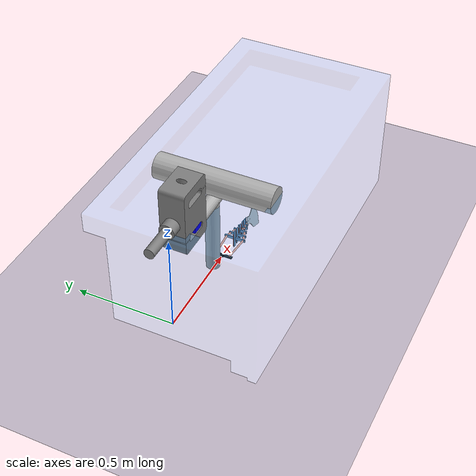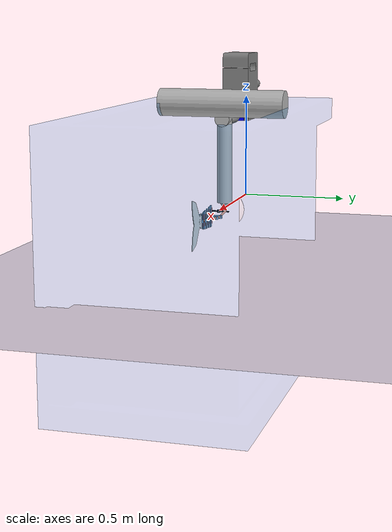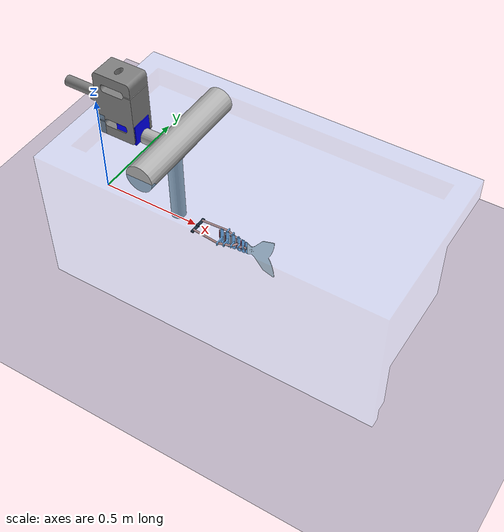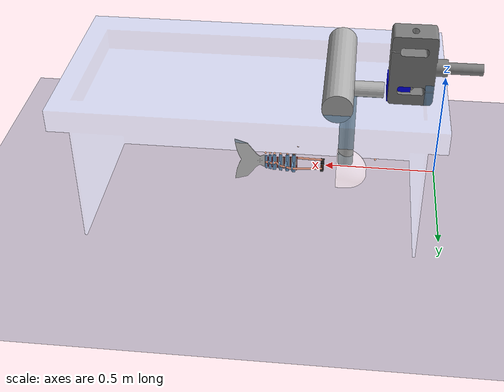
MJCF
<!--Creates a tendon fish based on Mike Yan Michelis' design. Adds a contact set between the head and the sliding block-->
<!-- Measures the force of the fish (from the thrust of its tail) via the FishTest.py script and the force sensor on the block-->
<!-- adds a realistic mass value to the bodies-->

<mujoco model="tendonFish">
    <option gravity="0 0 0" density="1000" viscosity="0.0013" integrator="implicitfast" timestep="0.001" iterations="100" solver="Newton" tolerance="1e-15" ls_tolerance="1e-9" noslip_tolerance="1e-9" o_solimp="0 0.01 0.01 0.1 2">
        <flag contact="enable"/>
    </option>

    <visual>
        <global offheight="2160" offwidth="3840"/>
        <rgba haze=".3 .3 .3 1"/>
    </visual>

    <!--add a mesh that pivots like the actual fishtank setup-->
    <!--imports meshes-->
    <asset>
        <texture type="skybox" builtin="gradient" rgb1="0.6 0.6 0.6" rgb2="0 0 0" width="512" height="512"/>
        <texture name="texplane" type="2d" builtin="checker" rgb1=".15 .2 .35" rgb2=".2 .3 .45" width="512" height="512" mark="cross" markrgb=".8 .8 .8"/>
        <material name="matplane" reflectance="0.3" texture="texplane" texrepeat="10 10" texuniform="true"/>
        <mesh name="tailMesh" file="C:\Users\15405\OneDrive\Desktop\Career\ETHZ\ETHZ Work\mujoco-3.3.2-windows-x86_64\model\mesh\tailV2.STL" scale="0.0015 0.0015 0.0025" />
        <mesh name="headMesh" file="C:\Users\15405\OneDrive\Desktop\Career\ETHZ\ETHZ Work\mujoco-3.3.2-windows-x86_64\model\mesh\headExternal.STL" scale="0.0015 0.0015 0.0025" />
        <mesh name="Tank" file="C:\Users\15405\OneDrive\Desktop\Career\ETHZ\ETHZ Work\mujoco-3.3.2-windows-x86_64\model\mesh\glassTank.STL" scale="0.0015 0.0015 0.0025" />
        <mesh name="loadCell" file="C:\Users\15405\OneDrive\Desktop\Career\ETHZ\ETHZ Work\mujoco-3.3.2-windows-x86_64\model\mesh\loadCell.STL" scale="0.015 0.025 0.025" />
        <material name="acrylic" rgba="0.576470588235 0.694117647059 0.8 0.2"/>
        <material name="alu" reflectance="0.9" specular="0.9" shininess="0.9" rgba=".7 .7 .7 1"/>
        <material name="marker" rgba=".9 .4 .1 .5"/>
    </asset>

    <!--High damping and stifness values on tendon make it semi-rigid which is what is intended in the real-fish test-->
    <default>
        <joint type="hinge" pos="0 0 0" axis="0 0 1" range="-80 80" stiffness="0.65" damping="0.0"/>
        <geom fluidcoef="0.1 0.1 0.1 2.0 1.0" condim="1"/>
        <tendon width="0.005" rgba=".9 .6 .5 1" stiffness="60" damping="1"/>
    </default>

    <worldbody>
        <camera name="fixed" pos="0.4 -1.2 1.2" xyaxes="1 0 0 0 1 1"/>
        <camera name="fixedTop" pos="-0.85 0 1.5" xyaxes="0 -1 0 1 0 0.75"/>
        <camera name="fixedDiag" pos="1.2 -1.2 1.2" xyaxes="0.8 0.6 0 -0.4 0.5 0.75"/>
        <camera pos="0.625 -0.842 0.620" xyaxes="0.758 0.653 -0.000 -0.468 0.544 0.697"/>

        <geom name="floor" pos="0 0 -0.2" size="0 0 1" type="plane" material="matplane"/>
        <geom name="ceiling" pos="0 0 0.2" size="0 0 1" zaxis="0 0 -1" type="plane" rgba=".7 .1 .1 0"/>
        <light directional="true" diffuse=".8 .8 .8" specular=".2 .2 .2" pos="0 0 5" dir="0 0 -1"/>

        <!--creates a loadcell body and overlapping mesh-->
        <body name="slider_body" pos=".20 0 .45">
            <!--creates a geometry, not a joint, restricts all movement-->
            <geom type="box" size=".05 .05 .05" rgba="0 0 1 1" contype="1" mass=".1" conaffinity="1"/>
            <site name="ft_sensor" pos="0 0 0" rgba="1 1 1 1" size=".05 .05 .05" type="box" />
            <geom name="loadingCell" type="mesh" mesh="loadCell" pos="-.35 -.055 -.05"/>
        </body>

        <body name="FishTank" pos="0 -.42 -.7">
            <geom name="TankMesh" type="mesh" mesh="Tank" pos="0 0 0" mass="0" contype="0" conaffinity="0" rgba="0.160784313725 0.588235294118 1 0.1"/>
        </body>

        <!--adds a slider range to keep the fish always propogating forward from its original com like in the simulation-->
        <!-- add a slider that keeps the head moving forward-->
        <body pos=".35 0 0">
            <joint name="headX" pos="0.02432519 0 0.00306519" type="slide" axis="1 0 0" stiffness="0" damping="0" range="-0.025669489880513867 0.003387345022720789"/>
            <site name="COM" pos="0.02432519 0 0.00306519" size="0.02" material="marker"/>

            <!-- realistic mass should be about .1 kg, had been .25 -->
            <geom name="head_mesh" type="mesh" mesh="headMesh" pos=".1 .105 .1" size="0.077 0.0025 0.05" material="acrylic" mass=".1" quat="0 0 .7071 -.7071" fluidshape="ellipsoid"  contype="1" conaffinity="1"  />

            <site name="marker0" pos="-0.077 0 0.05" size="0.005" material="marker"/>
            <site name="marker1" pos="0.065 0 0.05" size="0.005" material="marker"/>
            <site name="marker2" pos="0.1655 -0.0775 0.05" size="0.005" material="marker"/>
            <site name="marker3" pos="0.1655 0.0775 0.05" size="0.005" material="marker"/>
            <site name="bodyFin" pos="0.28 0 0.1" size="0.005" material="marker"/>

            <!--had stifness of 10000 and damping of 10000-->
            <!--had worked very well with s=10 and d=100-->
            <!--adds a hinge to turn translation force into rotation -->
            <body name="ForceAmp_Base" pos=".07 0 .30">
                <geom name="horizontalHinge" type="cylinder" pos=".035 0 .2" size=".065 .3" material="alu" mass=".001"  quat=".7071 .7071 0 0" contype="0" conaffinity="0" />
                <joint name="hingeHorizontal" type="hinge" axis="0 1 0"/>
            </body>

            <body pos=".061 0 .225" name="ForceAmp" >
                    <joint name="forceJoint" type="hinge" axis=" 0 1 0" pos="0 0 -.2" limited="true" stiffness="1" damping="10" range="-0.96 0"/>
                    <site name="ForceCOM" pos=" 0 0 -.2" size=".02" material="alu" />
                    <geom name="InitialHinge" type="cylinder" pos="0 0 0" size=".035 .2" material="alu" mass=".0005" fluidshape="ellipsoid" contype="1" conaffinity="1" />
                    <geom name="sideHinge" type="cylinder" pos="-.05 0 .2" size=".035 .1" material="alu" mass=".00025" contype="1" conaffinity="1" quat=".7071 0 .7071 0" />
            </body>

            <body pos="0.1655 0 0" name="motor" >
                <joint name="motor_rotate" type="hinge" axis="0 0 1" pos="0 0 0" limited="false" stiffness="0" damping="0"/>
                <geom name="motorSlider" type="cylinder" pos="0 0 0" size="0.0075 0.006" rgba=".1 .1 .1 1" density="1250" fluidshape="ellipsoid"/>
                <geom name="motorRods" type="box" pos="0 0 0" size="0.0075 0.05 0.001975" rgba=".1 .1 .1 1" density="1250" fluidshape="ellipsoid" contype="0" conaffinity="0"/>
                <site name="bodyLeft" pos="0 -0.035 0.00345" size="0.005" rgba=".9 .6 .5 .5"/>
                <site name="bodyRight" pos="0 0.035 0.00345" size="0.005" rgba=".9 .6 .5 .5"/>
            </body>

            <!--center frame realistic mass should be around .2 kg , divided by 5 joints should be .04 kg per joint-->
            <body pos="0.28500000000000003 0 0">
                <geom name="joint0" type="cylinder" pos="0 0 0" size="0.002 0.0376" rgba=".9 .2 .2 1" mass="0" contype="0" conaffinity="0"/>
                <joint name="joint0"/>
                <geom name="joint0-tail0" type="box" pos="0.0035 0 0" size="0.0035 0.0005 0.0375" rgba=".9 .9 .9 1" mass="0.001" fluidshape="ellipsoid" contype="0" conaffinity="0"/>
                <geom name="tail0" type="box" pos="0.014499999999999999 0 0" size="0.0075 0.0015 0.05" rgba=".5 .7 .9 1" density="1250" fluidshape="ellipsoid" contype="0" conaffinity="0"/>
                <site name="marker4" pos="0.014499999999999999 0 0.05" size="0.005" material="marker"/>

                <geom name="tail0left" type="box" pos="0.019 -0.02575 0" size="0.003 0.02925 0.007" rgba=".5 .7 .9 1" density="1250" fluidshape="ellipsoid" contype="0" conaffinity="0"/>
                <geom name="tail0right" type="box" pos="0.019 0.02575 0" size="0.003 0.02925 0.007" rgba=".5 .7 .9 1" density="1250" fluidshape="ellipsoid" contype="0" conaffinity="0"/>
                <site name="tail0left" pos="0.019 -0.045 0" size="0.004" rgba=".9 .6 .5 .5"/>
                <site name="tail0right" pos="0.019 0.045 0" size="0.004" rgba=".9 .6 .5 .5"/>

                <geom name="tail0-joint1" type="box" pos="0.02575 0 0" size="0.00375 0.0005 0.035" rgba=".9 .9 .9 1" mass="0.04" fluidshape="ellipsoid" contype="0" conaffinity="0"/>

                <body pos="0.0295 0 0">
                    <geom name="joint1" type="cylinder" pos="0 0 0" size="0.002 0.0351" rgba=".6 .1 .1 1" mass="0" contype="0" conaffinity="0"/>
                    <joint name="joint1"/>
                    <geom name="joint1-tail1" type="box" pos="0.00375 0 0" size="0.00375 0.0005 0.035" rgba=".9 .9 .9 1" mass="0.001" fluidshape="ellipsoid" contype="0" conaffinity="0"/>
                    <geom name="tail1" type="box" pos="0.015 0 0" size="0.0075 0.0015 0.0475" rgba=".5 .7 .9 1" density="1250" fluidshape="ellipsoid" contype="0" conaffinity="0"/>
                    <site name="marker5" pos="0.015 0 0.05" size="0.005" material="marker"/>

                    <geom name="tail1left" type="box" pos="0.0195 -0.02075 0" size="0.003 0.02425 0.007" rgba=".5 .7 .9 1" density="1250" fluidshape="ellipsoid" contype="0" conaffinity="0"/>
                    <geom name="tail1right" type="box" pos="0.0195 0.02075 0" size="0.003 0.02425 0.007" rgba=".5 .7 .9 1" density="1250" fluidshape="ellipsoid" contype="0" conaffinity="0"/>
                    <site name="tail1left" pos="0.0195 -0.035 0" size="0.004" rgba=".9 .6 .5 .5"/>
                    <site name="tail1right" pos="0.0195 0.035 0" size="0.004" rgba=".9 .6 .5 .5"/>

                    <geom name="tail1-joint2" type="box" pos="0.02675 0 0" size="0.00425 0.0005 0.0325" rgba=".9 .9 .9 1" mass="0.001" fluidshape="ellipsoid" contype="0" conaffinity="0"/>

                    <body pos="0.031 0 0">
                        <geom name="joint2" type="cylinder" pos="0 0 0" size="0.002 0.0326" rgba=".6 .1 .1 1" mass="0" contype="0" conaffinity="0"/>
                        <joint name="joint2"/>
                        <geom name="joint2-tail2" type="box" pos="0.00425 0 0" size="0.00425 0.0005 0.0325" rgba=".9 .9 .9 1" mass="0.001" fluidshape="ellipsoid" contype="0" conaffinity="0"/>
                        <geom name="tail2" type="box" pos="0.016 0 0" size="0.0075 0.0015 0.045" rgba=".5 .7 .9 1" density="1250" fluidshape="ellipsoid" contype="0" conaffinity="0"/>
                        <site name="marker6" pos="0.016 0 0.05" size="0.005" material="marker"/>

                        <geom name="tail2left" type="box" pos="0.0205 -0.01575 0" size="0.003 0.01925 0.007" rgba=".5 .7 .9 1" density="1250" fluidshape="ellipsoid" contype="0" conaffinity="0"/>
                        <geom name="tail2right" type="box" pos="0.0205 0.01575 0" size="0.003 0.01925 0.007" rgba=".5 .7 .9 1" density="1250" fluidshape="ellipsoid" contype="0" conaffinity="0"/>
                        <site name="tail2left" pos="0.0205 -0.025 0" size="0.004" rgba=".9 .6 .5 .5"/>
                        <site name="tail2right" pos="0.0205 0.025 0" size="0.004" rgba=".9 .6 .5 .5"/>

                        <geom name="tail2-joint3" type="box" pos="0.027 0 0" size="0.0035 0.0005 0.03" rgba=".9 .9 .9 1" mass="0.04" fluidshape="ellipsoid" contype="0" conaffinity="0"/>

                        <body pos="0.0305 0 0">
                            <geom name="joint3" type="cylinder" pos="0 0 0" size="0.002 0.0301" rgba=".9 .2 .2 1" mass="0" contype="0" conaffinity="0"/>
                            <joint name="joint3"/>
                            <geom name="joint3-tail3" type="box" pos="0.0035 0 0" size="0.0035 0.0005 0.03" rgba=".9 .9 .9 1" mass="0.001" fluidshape="ellipsoid" contype="0" conaffinity="0"/>
                            <geom name="tail3" type="box" pos="0.014499999999999999 0 0" size="0.0075 0.0015 0.0425" rgba=".5 .7 .9 1" density="1250" fluidshape="ellipsoid" contype="0" conaffinity="0"/>
                            <site name="marker7" pos="0.014499999999999999 0 0.05" size="0.005" material="marker"/>

                            <geom name="tail3left" type="box" pos="0.019 -0.01075 0" size="0.003 0.01425 0.007" rgba=".5 .7 .9 1" density="1250" fluidshape="ellipsoid" contype="0" conaffinity="0"/>
                            <geom name="tail3right" type="box" pos="0.019 0.01075 0" size="0.003 0.01425 0.007" rgba=".5 .7 .9 1" density="1250" fluidshape="ellipsoid" contype="0" conaffinity="0"/>
                            <site name="tail3left" pos="0.019 -0.015 0" size="0.004" rgba=".9 .6 .5 .5"/>
                            <site name="tail3right" pos="0.019 0.015 0" size="0.004" rgba=".9 .6 .5 .5"/>

                            <geom name="tail3-joint4" type="box" pos="0.0235 0 0" size="0.0015 0.0005 0.0275" rgba=".9 .9 .9 1" mass="0.04" fluidshape="ellipsoid" contype="0" conaffinity="0"/>

                            <body pos="0.024999999999999998 0 0">
                                <geom name="joint4" type="cylinder" pos="0 0 0" size="0.0025 0.0276" rgba=".9 .2 .2 1" mass="0" contype="0" conaffinity="0"/>
                                <joint name="joint4"/>
                                <geom name="joint4-tail4" type="box" pos="0.0015 0 0" size="0.0015 0.0005 0.0275" rgba=".9 .9 .9 1" mass="0.001" fluidshape="ellipsoid" contype="0" conaffinity="0"/>
                                <geom name="tail4" type="box" pos="0.010499999999999999 0 0" size="0.0075 0.0015 0.04" rgba=".5 .7 .9 1" density="1250" fluidshape="ellipsoid" contype="0" conaffinity="0"/>
                                <site name="marker8" pos="0.010499999999999999 0 0.05" size="0.005" material="marker"/>

                                <geom name="tail4left" type="box" pos="0.015 -0.00575 0" size="0.003 0.00925 0.007" rgba=".5 .7 .9 1" density="1250" fluidshape="ellipsoid" contype="0" conaffinity="0"/>
                                <geom name="tail4right" type="box" pos="0.015 0.00575 0" size="0.003 0.00925 0.007" rgba=".5 .7 .9 1" density="1250" fluidshape="ellipsoid" contype="0" conaffinity="0"/>
                                <site name="tail4left" pos="0.015 -0.005 0" size="0.004" rgba=".9 .6 .5 .5"/>
                                <site name="tail4right" pos="0.015 0.005 0" size="0.004" rgba=".9 .6 .5 .5"/>

                                <body pos="0.02 0 0">
                                    <geom name="joint5" type="cylinder" pos="0 0 0" size="0.00175 0.0276" rgba=".9 .2 .2 1" mass="0" contype="0" conaffinity="0"/>
                                    <joint name="joint5"/>
                                    <geom name="joint5-tail5" type="box" pos="0.0015 0 0" size="0.0015 0.0005 0.0275" rgba=".9 .9 .9 1" mass="0.001" fluidshape="ellipsoid" contype="0" conaffinity="0"/>
                                    <geom name="tail5" type="box" pos="0.008 0 0" size="0.0055 0.0012 0.036" rgba=".5 .7 .9 1" density="1250" fluidshape="ellipsoid" contype="0" conaffinity="0"/>
                                    <site name="marker9" pos="0.010499999999999999 0 0.05" size="0.005" material="marker"/>

                                    <geom name="tail5left" type="box" pos="0.011 -0.00075 0" size="0.003 0.00425 0.007" rgba=".5 .7 .9 1" density="1250" fluidshape="ellipsoid" contype="0" conaffinity="0"/>
                                    <geom name="tail5right" type="box" pos="0.011 0.00075 0" size="0.003 0.00425 0.007" rgba=".5 .7 .9 1" density="1250" fluidshape="ellipsoid" contype="0" conaffinity="0"/>
                                    <site name="tail5left" pos="0.011 -0.005 0" size="0.004" rgba=".9 .6 .5 .5"/>
                                    <site name="tail5right" pos="0.011 0.005 0" size="0.004" rgba=".9 .6 .5 .5"/>

                                <!-- Tail Fin, realistic mass should be about .05 kg, was .15 kg -->
                                <geom name="finTail" type="mesh"  mesh="tailMesh" pos="-.190 -.00310 -.110" size="0.005 0.005 0.025" quat="0.7071 0.7071 0 0" rgba=".9 .9 .9 1" mass="0.05" fluidshape="ellipsoid" contype="0" conaffinity="0"/>
                                <site name="marker10" pos="0.025 .0085 -0.5" size="0.005" material="marker"/>

                                </body>
                            </body>
                        </body>
                    </body>
                </body>
            </body>
        </body>

    </worldbody>

    <!--tail organization-->
    <tendon>
        <spatial name="tendonLeft">
            <site site="bodyLeft"/>
            <site site="tail0left"/>
            <site site="tail1left"/>
            <site site="tail2left"/>
            <site site="tail3right"/>
            <site site="tail4right"/>
            <site site="tail5right"/>
        </spatial>
        <spatial name="tendonRight" >
            <site site="bodyRight"/>
            <site site="tail0right"/>
            <site site="tail1right"/>
            <site site="tail2right"/>
            <site site="tail3left"/>
            <site site="tail4left"/>
            <site site="tail5left"/>
        </spatial>
    </tendon>

    <!--creates actuator to control motor and to couple the forceamplifier. Measures the force with a sensor-->
    <actuator>
        <velocity name="motor" joint="motor_rotate" kv="100" ctrllimited="true" ctrlrange="-20 20" forcerange="-2.5 2.5"/>
         <position name="force_actuator" joint="forceJoint" kp="500"/>
    </actuator>

    <sensor>
        <force name = "force" site="ft_sensor" />
	</sensor>

</mujoco>
